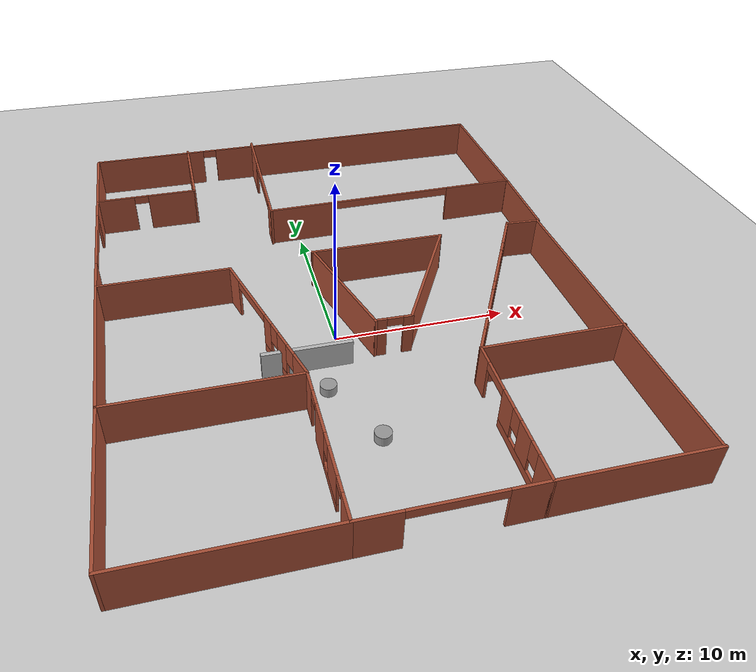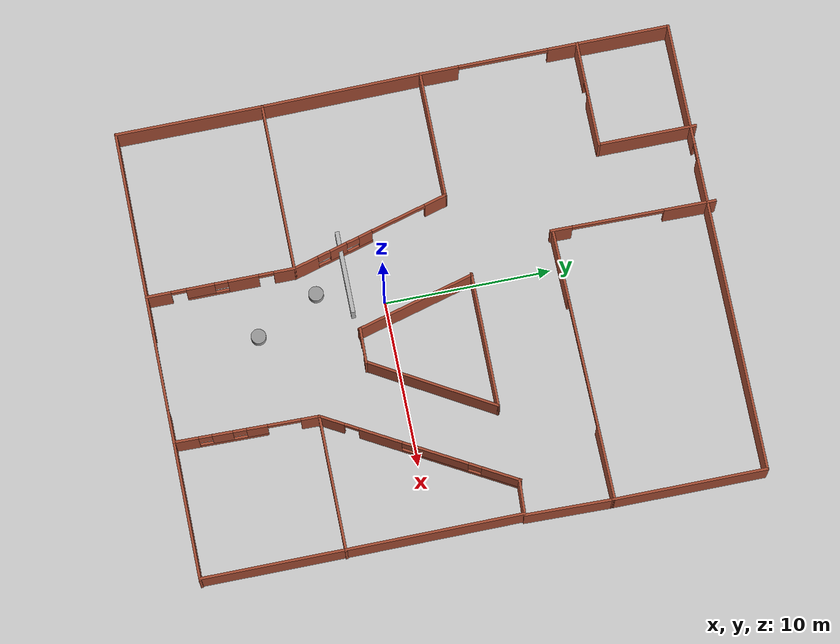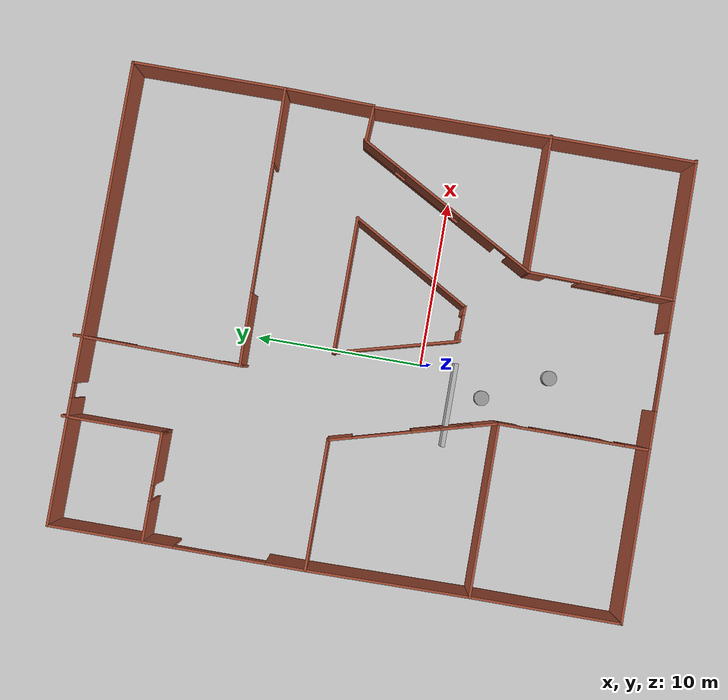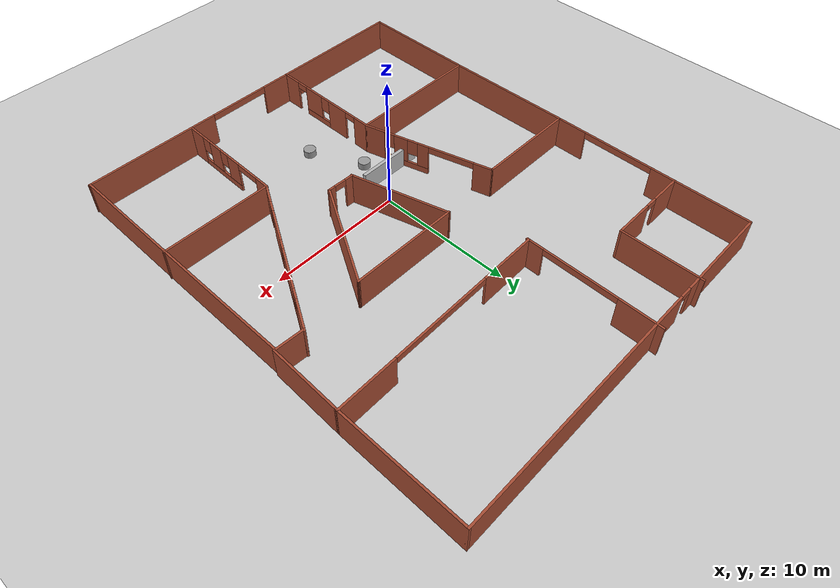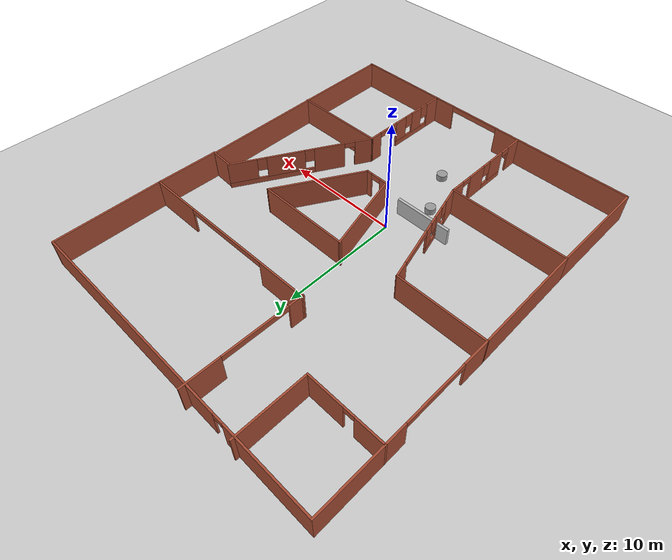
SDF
<sdf version="1.6">
 <world name="default">
  <light name="sun" type="directional">
   <pose>0 0 10 0 -0 0</pose>
   <diffuse>0.8 0.8 0.8 1</diffuse>
   <specular>0.2 0.2 0.2 1</specular>
   <attenuation>
    <range>1000</range>
    <constant>0.9</constant>
    <linear>0.01</linear>
    <quadratic>0.001</quadratic>
   </attenuation>
   <direction>-0.5 0.1 -0.9</direction>
  </light>
  <model name="unit_cylinder">
   <pose>0.583356 -7.74003 0 0 -0 0</pose>
   <link name="link">
    <inertial>
     <mass>1</mass>
     <inertia><ixx>0.145833</ixx><ixy>0</ixy><ixz>0</ixz><iyy>0.145833</iyy><iyz>0</iyz><izz>0.125</izz></inertia>
    </inertial>
    <collision name="collision">
     <geometry><cylinder><radius>0.45</radius><length>1</length></cylinder></geometry>
    </collision>
    <visual name="visual">
     <geometry><cylinder><radius>0.45</radius><length>1</length></cylinder></geometry>
     <material>
      <script><name>Gazebo/Grey</name><uri>file://media/materials/scripts/gazebo.material</uri></script>
     </material>
    </visual>
   </link>
  </model>
  <model name="box">
   <pose>-2 -2 0 0 -0 0</pose>
   <link name="boxsss">
    <visual name="box_visual"><geometry><box><size>5 0.25 3</size></box></geometry></visual>
    <collision name="box_collision"><geometry><box><size>5 0.25 3</size></box></geometry></collision>
   </link>
  </model>
  <model name="unit_cylinder1">
   <pose>-1.289148 -3.91868 0 0 -0 0</pose>
   <link name="link">
    <inertial>
     <mass>1</mass>
     <inertia><ixx>0.145833</ixx><ixy>0</ixy><ixz>0</ixz><iyy>0.145833</iyy><iyz>0</iyz><izz>0.125</izz></inertia>
    </inertial>
    <collision name="collision">
     <geometry><cylinder><radius>0.45</radius><length>1</length></cylinder></geometry>
    </collision>
    <visual name="visual">
     <geometry><cylinder><radius>0.45</radius><length>1</length></cylinder></geometry>
     <material>
      <script><name>Gazebo/Grey</name><uri>file://media/materials/scripts/gazebo.material</uri></script>
     </material>
    </visual>
   </link>
  </model>
  <model name="ground_plane">
   <static>1</static>
   <link name="link">
    <collision name="collision">
     <geometry><plane><normal>0 0 1</normal><size>100 100</size></plane></geometry>
     <surface><friction><ode><mu>100</mu><mu2>50</mu2></ode></friction></surface>
    </collision>
    <visual name="visual">
     <cast_shadows>0</cast_shadows>
     <geometry><plane><normal>0 0 1</normal><size>100 100</size></plane></geometry>
     <material>
      <script><uri>file://media/materials/scripts/gazebo.material</uri><name>Gazebo/Grey</name></script>
     </material>
    </visual>
   </link>
  </model>
  <gravity>0 0 -9.8</gravity>
  <magnetic_field>6e-06 2.3e-05 -4.2e-05</magnetic_field>
  <atmosphere type="adiabatic"/>
  <physics default="0" name="default_physics" type="ode">
   <max_step_size>0.001</max_step_size>
   <real_time_factor>1</real_time_factor>
   <real_time_update_rate>1000</real_time_update_rate>
  </physics>
  <scene><ambient>0.4 0.4 0.4 1</ambient><background>0.7 0.7 0.7 1</background><shadows>1</shadows></scene>
  <audio><device>default</device></audio>
  <spherical_coordinates>
   <surface_model>EARTH_WGS84</surface_model>
   <latitude_deg>0</latitude_deg>
   <longitude_deg>0</longitude_deg>
   <elevation>0</elevation>
   <heading_deg>0</heading_deg>
  </spherical_coordinates>
  <model name="mundov3">
   <pose>0.932437 3.25333 0 0 -0 0</pose>
   <link name="Wall_11">
    <pose>-4.80392 -3.33714 0 0 -0 1.83788</pose>
    <visual name="Wall_11_Visual_0">
     <pose>-4.24413 0 1.25 0 -0 0</pose>
     <geometry><box><size>1.56649 0.15 2.5</size></box></geometry>
     <material>
      <script><uri>file://media/materials/scripts/gazebo.material</uri><name>Gazebo/Bricks</name></script>
      <ambient>1 1 1 1</ambient>
     </material>
     <meta><layer>0</layer></meta>
    </visual>
    <collision name="Wall_11_Collision_0">
     <geometry><box><size>1.56649 0.15 2.5</size></box></geometry>
     <pose>-4.24413 0 1.25 0 -0 0</pose>
    </collision>
    <visual name="Wall_11_Visual_1">
     <pose>4.29236 0 1.25 0 -0 0</pose>
     <geometry><box><size>1.47004 0.15 2.5</size></box></geometry>
     <material>
      <script><uri>file://media/materials/scripts/gazebo.material</uri><name>Gazebo/Bricks</name></script>
      <ambient>1 1 1 1</ambient>
     </material>
     <meta><layer>0</layer></meta>
    </visual>
    <collision name="Wall_11_Collision_1">
     <geometry><box><size>1.47004 0.15 2.5</size></box></geometry>
     <pose>4.29236 0 1.25 0 -0 0</pose>
    </collision>
    <visual name="Wall_11_Visual_2">
     <pose>-1.68949 0 0.25 0 -0 0</pose>
     <geometry><box><size>3.54279 0.15 0.5</size></box></geometry>
     <material>
      <script><uri>file://media/materials/scripts/gazebo.material</uri><name>Gazebo/Bricks</name></script>
      <ambient>1 1 1 1</ambient>
     </material>
     <meta><layer>0</layer></meta>
    </visual>
    <collision name="Wall_11_Collision_2">
     <geometry><box><size>3.54279 0.15 0.5</size></box></geometry>
     <pose>-1.68949 0 0.25 0 -0 0</pose>
    </collision>
    <visual name="Wall_11_Visual_3">
     <pose>-2.1206 0 1.5 0 -0 0</pose>
     <geometry><box><size>1.08057 0.15 2</size></box></geometry>
     <material>
      <script><uri>file://media/materials/scripts/gazebo.material</uri><name>Gazebo/Bricks</name></script>
      <ambient>1 1 1 1</ambient>
     </material>
     <meta><layer>0</layer></meta>
    </visual>
    <collision name="Wall_11_Collision_3">
     <geometry><box><size>1.08057 0.15 2</size></box></geometry>
     <pose>-2.1206 0 1.5 0 -0 0</pose>
    </collision>
    <visual name="Wall_11_Visual_4">
     <pose>-0.349205 0 1.5 0 -0 0</pose>
     <geometry><box><size>0.862223 0.15 2</size></box></geometry>
     <material>
      <script><uri>file://media/materials/scripts/gazebo.material</uri><name>Gazebo/Bricks</name></script>
      <ambient>1 1 1 1</ambient>
     </material>
     <meta><layer>0</layer></meta>
    </visual>
    <collision name="Wall_11_Collision_4">
     <geometry><box><size>0.862223 0.15 2</size></box></geometry>
     <pose>-0.349205 0 1.5 0 -0 0</pose>
    </collision>
    <visual name="Wall_11_Visual_5">
     <pose>-3.06089 0 1.9 0 -0 0</pose>
     <geometry><box><size>0.8 0.15 1.2</size></box></geometry>
     <material>
      <script><uri>file://media/materials/scripts/gazebo.material</uri><name>Gazebo/Bricks</name></script>
      <ambient>1 1 1 1</ambient>
     </material>
     <meta><layer>0</layer></meta>
    </visual>
    <collision name="Wall_11_Collision_5">
     <geometry><box><size>0.8 0.15 1.2</size></box></geometry>
     <pose>-3.06089 0 1.9 0 -0 0</pose>
    </collision>
    <visual name="Wall_11_Visual_6">
     <pose>-1.18032 0 1.9 0 -0 0</pose>
     <geometry><box><size>0.8 0.15 1.2</size></box></geometry>
     <material>
      <script><uri>file://media/materials/scripts/gazebo.material</uri><name>Gazebo/Bricks</name></script>
      <ambient>1 1 1 1</ambient>
     </material>
     <meta><layer>0</layer></meta>
    </visual>
    <collision name="Wall_11_Collision_6">
     <geometry><box><size>0.8 0.15 1.2</size></box></geometry>
     <pose>-1.18032 0 1.9 0 -0 0</pose>
    </collision>
    <visual name="Wall_11_Visual_7">
     <pose>1.81962 0 2.25 0 -0 0</pose>
     <geometry><box><size>3.47543 0.15 0.5</size></box></geometry>
     <material>
      <script><uri>file://media/materials/scripts/gazebo.material</uri><name>Gazebo/Bricks</name></script>
      <ambient>1 1 1 1</ambient>
     </material>
     <meta><layer>0</layer></meta>
    </visual>
    <collision name="Wall_11_Collision_7">
     <geometry><box><size>3.47543 0.15 0.5</size></box></geometry>
     <pose>1.81962 0 2.25 0 -0 0</pose>
    </collision>
   </link>
   <link name="Wall_12">
    <collision name="Wall_12_Collision">
     <geometry><box><size>7.75 0.15 2.5</size></box></geometry>
     <pose>0 0 1.25 0 -0 0</pose>
    </collision>
    <visual name="Wall_12_Visual">
     <pose>0 0 1.25 0 -0 0</pose>
     <geometry><box><size>7.75 0.15 2.5</size></box></geometry>
     <material>
      <script><uri>file://media/materials/scripts/gazebo.material</uri><name>Gazebo/Bricks</name></script>
      <ambient>1 1 1 1</ambient>
     </material>
     <meta><layer>0</layer></meta>
    </visual>
    <pose>-9.91095 1.43964 0 0 -0 3.14159</pose>
   </link>
   <link name="Wall_13">
    <collision name="Wall_13_Collision">
     <geometry><box><size>9.74471 0.15 2.5</size></box></geometry>
     <pose>0 0 1.25 0 -0 0</pose>
    </collision>
    <visual name="Wall_13_Visual">
     <pose>0 0 1.25 0 -0 0</pose>
     <geometry><box><size>9.74471 0.15 2.5</size></box></geometry>
     <material>
      <script><uri>file://media/materials/scripts/gazebo.material</uri><name>Gazebo/Bricks</name></script>
      <ambient>1 1 1 1</ambient>
     </material>
     <meta><layer>0</layer></meta>
    </visual>
    <pose>-13.6539 -3.35737 0 0 -0 -1.55891</pose>
   </link>
   <link name="Wall_14">
    <collision name="Wall_14_Collision">
     <geometry><box><size>10.25 0.15 2.5</size></box></geometry>
     <pose>0 0 1.25 0 -0 0</pose>
    </collision>
    <visual name="Wall_14_Visual">
     <pose>0 0 1.25 0 -0 0</pose>
     <geometry><box><size>10.25 0.15 2.5</size></box></geometry>
     <material>
      <script><uri>file://media/materials/scripts/gazebo.material</uri><name>Gazebo/Bricks</name></script>
      <ambient>1 1 1 1</ambient>
     </material>
     <meta><layer>0</layer></meta>
    </visual>
    <pose>-8.54688 -8.15438 0 0 -0 0</pose>
   </link>
   <link name="Wall_16">
    <pose>-3.49688 -12.5794 0 0 -0 -1.5708</pose>
    <visual name="Wall_16_Visual_0">
     <pose>-3.83684 0 1.25 0 -0 0</pose>
     <geometry><box><size>1.32632 0.15 2.5</size></box></geometry>
     <material>
      <script><uri>file://media/materials/scripts/gazebo.material</uri><name>Gazebo/Bricks</name></script>
      <ambient>1 1 1 1</ambient>
     </material>
     <meta><layer>0</layer></meta>
    </visual>
    <collision name="Wall_16_Collision_0">
     <geometry><box><size>1.32632 0.15 2.5</size></box></geometry>
     <pose>-3.83684 0 1.25 0 -0 0</pose>
    </collision>
    <visual name="Wall_16_Visual_1">
     <pose>-1.35429 0 1.25 0 -0 0</pose>
     <geometry><box><size>1.83877 0.15 2.5</size></box></geometry>
     <material>
      <script><uri>file://media/materials/scripts/gazebo.material</uri><name>Gazebo/Bricks</name></script>
      <ambient>1 1 1 1</ambient>
     </material>
     <meta><layer>0</layer></meta>
    </visual>
    <collision name="Wall_16_Collision_1">
     <geometry><box><size>1.83877 0.15 2.5</size></box></geometry>
     <pose>-1.35429 0 1.25 0 -0 0</pose>
    </collision>
    <visual name="Wall_16_Visual_2">
     <pose>3.73117 0 1.25 0 -0 0</pose>
     <geometry><box><size>1.53766 0.15 2.5</size></box></geometry>
     <material>
      <script><uri>file://media/materials/scripts/gazebo.material</uri><name>Gazebo/Bricks</name></script>
      <ambient>1 1 1 1</ambient>
     </material>
     <meta><layer>0</layer></meta>
    </visual>
    <collision name="Wall_16_Collision_2">
     <geometry><box><size>1.53766 0.15 2.5</size></box></geometry>
     <pose>3.73117 0 1.25 0 -0 0</pose>
    </collision>
    <visual name="Wall_16_Visual_3">
     <pose>0.813717 0 0.25 0 -0 0</pose>
     <geometry><box><size>2.49726 0.15 0.5</size></box></geometry>
     <material>
      <script><uri>file://media/materials/scripts/gazebo.material</uri><name>Gazebo/Bricks</name></script>
      <ambient>1 1 1 1</ambient>
     </material>
     <meta><layer>0</layer></meta>
    </visual>
    <collision name="Wall_16_Collision_3">
     <geometry><box><size>2.49726 0.15 0.5</size></box></geometry>
     <pose>0.813717 0 0.25 0 -0 0</pose>
    </collision>
    <visual name="Wall_16_Visual_4">
     <pose>1.21372 0 1.5 0 -0 0</pose>
     <geometry><box><size>1.69725 0.15 2</size></box></geometry>
     <material>
      <script><uri>file://media/materials/scripts/gazebo.material</uri><name>Gazebo/Bricks</name></script>
      <ambient>1 1 1 1</ambient>
     </material>
     <meta><layer>0</layer></meta>
    </visual>
    <collision name="Wall_16_Collision_4">
     <geometry><box><size>1.69725 0.15 2</size></box></geometry>
     <pose>1.21372 0 1.5 0 -0 0</pose>
    </collision>
    <visual name="Wall_16_Visual_5">
     <pose>-0.03491 0 1.9 0 -0 0</pose>
     <geometry><box><size>0.8 0.15 1.2</size></box></geometry>
     <material>
      <script><uri>file://media/materials/scripts/gazebo.material</uri><name>Gazebo/Bricks</name></script>
      <ambient>1 1 1 1</ambient>
     </material>
     <meta><layer>0</layer></meta>
    </visual>
    <collision name="Wall_16_Collision_5">
     <geometry><box><size>0.8 0.15 1.2</size></box></geometry>
     <pose>-0.03491 0 1.9 0 -0 0</pose>
    </collision>
    <visual name="Wall_16_Visual_6">
     <pose>-2.72368 0 2.25 0 -0 0</pose>
     <geometry><box><size>0.9 0.15 0.5</size></box></geometry>
     <material>
      <script><uri>file://media/materials/scripts/gazebo.material</uri><name>Gazebo/Bricks</name></script>
      <ambient>1 1 1 1</ambient>
     </material>
     <meta><layer>0</layer></meta>
    </visual>
    <collision name="Wall_16_Collision_6">
     <geometry><box><size>0.9 0.15 0.5</size></box></geometry>
     <pose>-2.72368 0 2.25 0 -0 0</pose>
    </collision>
    <visual name="Wall_16_Visual_7">
     <pose>2.51234 0 2.25 0 -0 0</pose>
     <geometry><box><size>0.9 0.15 0.5</size></box></geometry>
     <material>
      <script><uri>file://media/materials/scripts/gazebo.material</uri><name>Gazebo/Bricks</name></script>
      <ambient>1 1 1 1</ambient>
     </material>
     <meta><layer>0</layer></meta>
    </visual>
    <collision name="Wall_16_Collision_7">
     <geometry><box><size>0.9 0.15 0.5</size></box></geometry>
     <pose>2.51234 0 2.25 0 -0 0</pose>
    </collision>
   </link>
   <link name="Wall_17">
    <collision name="Wall_17_Collision">
     <geometry><box><size>10.25 0.15 2.5</size></box></geometry>
     <pose>0 0 1.25 0 -0 0</pose>
    </collision>
    <visual name="Wall_17_Visual">
     <pose>0 0 1.25 0 -0 0</pose>
     <geometry><box><size>10.25 0.15 2.5</size></box></geometry>
     <material>
      <script><uri>file://media/materials/scripts/gazebo.material</uri><name>Gazebo/Bricks</name></script>
      <ambient>1 1 1 1</ambient>
     </material>
     <meta><layer>0</layer></meta>
    </visual>
    <pose>-8.54688 -17.0044 0 0 -0 3.14159</pose>
   </link>
   <link name="Wall_18">
    <collision name="Wall_18_Collision">
     <geometry><box><size>9 0.15 2.5</size></box></geometry>
     <pose>0 0 1.25 0 -0 0</pose>
    </collision>
    <visual name="Wall_18_Visual">
     <pose>0 0 1.25 0 -0 0</pose>
     <geometry><box><size>9 0.15 2.5</size></box></geometry>
     <material>
      <script><uri>file://media/materials/scripts/gazebo.material</uri><name>Gazebo/Bricks</name></script>
      <ambient>1 1 1 1</ambient>
     </material>
     <meta><layer>0</layer></meta>
    </visual>
    <pose>-13.5969 -12.5794 0 0 -0 1.5708</pose>
   </link>
   <link name="Wall_20">
    <pose>0.928119 -17.0044 0 0 -0 0</pose>
    <visual name="Wall_20_Visual_0">
     <pose>-3.32868 0 1.25 0 -0 0</pose>
     <geometry><box><size>2.34264 0.15 2.5</size></box></geometry>
     <material>
      <script><uri>file://media/materials/scripts/gazebo.material</uri><name>Gazebo/Bricks</name></script>
      <ambient>1 1 1 1</ambient>
     </material>
     <meta><layer>0</layer></meta>
    </visual>
    <collision name="Wall_20_Collision_0">
     <geometry><box><size>2.34264 0.15 2.5</size></box></geometry>
     <pose>-3.32868 0 1.25 0 -0 0</pose>
    </collision>
    <visual name="Wall_20_Visual_1">
     <pose>3.49284 0 1.25 0 -0 0</pose>
     <geometry><box><size>2.01431 0.15 2.5</size></box></geometry>
     <material>
      <script><uri>file://media/materials/scripts/gazebo.material</uri><name>Gazebo/Bricks</name></script>
      <ambient>1 1 1 1</ambient>
     </material>
     <meta><layer>0</layer></meta>
    </visual>
    <collision name="Wall_20_Collision_1">
     <geometry><box><size>2.01431 0.15 2.5</size></box></geometry>
     <pose>3.49284 0 1.25 0 -0 0</pose>
    </collision>
    <visual name="Wall_20_Visual_2">
     <pose>0.164163 0 2.25 0 -0 0</pose>
     <geometry><box><size>4.64305 0.15 0.5</size></box></geometry>
     <material>
      <script><uri>file://media/materials/scripts/gazebo.material</uri><name>Gazebo/Bricks</name></script>
      <ambient>1 1 1 1</ambient>
     </material>
     <meta><layer>0</layer></meta>
    </visual>
    <collision name="Wall_20_Collision_2">
     <geometry><box><size>4.64305 0.15 0.5</size></box></geometry>
     <pose>0.164163 0 2.25 0 -0 0</pose>
    </collision>
   </link>
   <link name="Wall_22">
    <pose>5.42826 -12.7044 0 0 -0 1.55332</pose>
    <visual name="Wall_22_Visual_0">
     <pose>-3.6142 0 1.25 0 -0 0</pose>
     <geometry><box><size>1.52292 0.15 2.5</size></box></geometry>
     <material>
      <script><uri>file://media/materials/scripts/gazebo.material</uri><name>Gazebo/Bricks</name></script>
      <ambient>1 1 1 1</ambient>
     </material>
     <meta><layer>0</layer></meta>
    </visual>
    <collision name="Wall_22_Collision_0">
     <geometry><box><size>1.52292 0.15 2.5</size></box></geometry>
     <pose>-3.6142 0 1.25 0 -0 0</pose>
    </collision>
    <visual name="Wall_22_Visual_1">
     <pose>3.78407 0 1.25 0 -0 0</pose>
     <geometry><box><size>1.18318 0.15 2.5</size></box></geometry>
     <material>
      <script><uri>file://media/materials/scripts/gazebo.material</uri><name>Gazebo/Bricks</name></script>
      <ambient>1 1 1 1</ambient>
     </material>
     <meta><layer>0</layer></meta>
    </visual>
    <collision name="Wall_22_Collision_1">
     <geometry><box><size>1.18318 0.15 2.5</size></box></geometry>
     <pose>3.78407 0 1.25 0 -0 0</pose>
    </collision>
    <visual name="Wall_22_Visual_2">
     <pose>-0.810802 0 0.25 0 -0 0</pose>
     <geometry><box><size>4.08388 0.15 0.5</size></box></geometry>
     <material>
      <script><uri>file://media/materials/scripts/gazebo.material</uri><name>Gazebo/Bricks</name></script>
      <ambient>1 1 1 1</ambient>
     </material>
     <meta><layer>0</layer></meta>
    </visual>
    <collision name="Wall_22_Collision_2">
     <geometry><box><size>4.08388 0.15 0.5</size></box></geometry>
     <pose>-0.810802 0 0.25 0 -0 0</pose>
    </collision>
    <visual name="Wall_22_Visual_3">
     <pose>-1.43738 0 1.5 0 -0 0</pose>
     <geometry><box><size>1.23073 0.15 2</size></box></geometry>
     <material>
      <script><uri>file://media/materials/scripts/gazebo.material</uri><name>Gazebo/Bricks</name></script>
      <ambient>1 1 1 1</ambient>
     </material>
     <meta><layer>0</layer></meta>
    </visual>
    <collision name="Wall_22_Collision_3">
     <geometry><box><size>1.23073 0.15 2</size></box></geometry>
     <pose>-1.43738 0 1.5 0 -0 0</pose>
    </collision>
    <visual name="Wall_22_Visual_4">
     <pose>0.604563 0 1.5 0 -0 0</pose>
     <geometry><box><size>1.25315 0.15 2</size></box></geometry>
     <material>
      <script><uri>file://media/materials/scripts/gazebo.material</uri><name>Gazebo/Bricks</name></script>
      <ambient>1 1 1 1</ambient>
     </material>
     <meta><layer>0</layer></meta>
    </visual>
    <collision name="Wall_22_Collision_4">
     <geometry><box><size>1.25315 0.15 2</size></box></geometry>
     <pose>0.604563 0 1.5 0 -0 0</pose>
    </collision>
    <visual name="Wall_22_Visual_5">
     <pose>-2.45274 0 1.9 0 -0 0</pose>
     <geometry><box><size>0.8 0.15 1.2</size></box></geometry>
     <material>
      <script><uri>file://media/materials/scripts/gazebo.material</uri><name>Gazebo/Bricks</name></script>
      <ambient>1 1 1 1</ambient>
     </material>
     <meta><layer>0</layer></meta>
    </visual>
    <collision name="Wall_22_Collision_5">
     <geometry><box><size>0.8 0.15 1.2</size></box></geometry>
     <pose>-2.45274 0 1.9 0 -0 0</pose>
    </collision>
    <visual name="Wall_22_Visual_6">
     <pose>-0.422012 0 1.9 0 -0 0</pose>
     <geometry><box><size>0.8 0.15 1.2</size></box></geometry>
     <material>
      <script><uri>file://media/materials/scripts/gazebo.material</uri><name>Gazebo/Bricks</name></script>
      <ambient>1 1 1 1</ambient>
     </material>
     <meta><layer>0</layer></meta>
    </visual>
    <collision name="Wall_22_Collision_6">
     <geometry><box><size>0.8 0.15 1.2</size></box></geometry>
     <pose>-0.422012 0 1.9 0 -0 0</pose>
    </collision>
    <visual name="Wall_22_Visual_7">
     <pose>2.21181 0 2.25 0 -0 0</pose>
     <geometry><box><size>1.96134 0.15 0.5</size></box></geometry>
     <material>
      <script><uri>file://media/materials/scripts/gazebo.material</uri><name>Gazebo/Bricks</name></script>
      <ambient>1 1 1 1</ambient>
     </material>
     <meta><layer>0</layer></meta>
    </visual>
    <collision name="Wall_22_Collision_7">
     <geometry><box><size>1.96134 0.15 0.5</size></box></geometry>
     <pose>2.21181 0 2.25 0 -0 0</pose>
    </collision>
   </link>
   <link name="Wall_23">
    <collision name="Wall_23_Collision">
     <geometry><box><size>8.25 0.15 2.5</size></box></geometry>
     <pose>0 0 1.25 0 -0 0</pose>
    </collision>
    <visual name="Wall_23_Visual">
     <pose>0 0 1.25 0 -0 0</pose>
     <geometry><box><size>8.25 0.15 2.5</size></box></geometry>
     <material>
      <script><uri>file://media/materials/scripts/gazebo.material</uri><name>Gazebo/Bricks</name></script>
      <ambient>1 1 1 1</ambient>
     </material>
     <meta><layer>0</layer></meta>
    </visual>
    <pose>9.55339 -8.40438 0 0 -0 0</pose>
   </link>
   <link name="Wall_24">
    <collision name="Wall_24_Collision">
     <geometry><box><size>8.75 0.15 2.5</size></box></geometry>
     <pose>0 0 1.25 0 -0 0</pose>
    </collision>
    <visual name="Wall_24_Visual">
     <pose>0 0 1.25 0 -0 0</pose>
     <geometry><box><size>8.75 0.15 2.5</size></box></geometry>
     <material>
      <script><uri>file://media/materials/scripts/gazebo.material</uri><name>Gazebo/Bricks</name></script>
      <ambient>1 1 1 1</ambient>
     </material>
     <meta><layer>0</layer></meta>
    </visual>
    <pose>13.5419 -12.7044 0 0 -0 -1.5708</pose>
   </link>
   <link name="Wall_27">
    <collision name="Wall_27_Collision">
     <geometry><box><size>8.40028 0.15 2.5</size></box></geometry>
     <pose>0 0 1.25 0 -0 0</pose>
    </collision>
    <visual name="Wall_27_Visual">
     <pose>0 0 1.25 0 -0 0</pose>
     <geometry><box><size>8.40028 0.15 2.5</size></box></geometry>
     <material>
      <script><uri>file://media/materials/scripts/gazebo.material</uri><name>Gazebo/Bricks</name></script>
      <ambient>1 1 1 1</ambient>
     </material>
     <meta><layer>0</layer></meta>
    </visual>
    <pose>9.47826 -17.0044 0 0 -0 0</pose>
   </link>
   <link name="Wall_35">
    <collision name="Wall_35_Collision">
     <geometry><box><size>7.5 0.15 2.5</size></box></geometry>
     <pose>0 0 1.25 0 -0 0</pose>
    </collision>
    <visual name="Wall_35_Visual">
     <pose>0 0 1.25 0 -0 0</pose>
     <geometry><box><size>7.5 0.15 2.5</size></box></geometry>
     <material>
      <script><uri>file://media/materials/scripts/gazebo.material</uri><name>Gazebo/Bricks</name></script>
      <ambient>1 1 1 1</ambient>
     </material>
     <meta><layer>0</layer></meta>
    </visual>
    <pose>-0.102939 -1.5544 0 0 -0 -1.309</pose>
   </link>
   <link name="Wall_36">
    <pose>1.86764 -5.08039 0 0 -0 -0.022302</pose>
    <visual name="Wall_36_Visual_0">
     <pose>-0.740669 0 1.25 0 -0 0</pose>
     <geometry><box><size>0.70843 0.15 2.5</size></box></geometry>
     <material>
      <script><uri>file://media/materials/scripts/gazebo.material</uri><name>Gazebo/Bricks</name></script>
      <ambient>1 1 1 1</ambient>
     </material>
     <meta><layer>0</layer></meta>
    </visual>
    <collision name="Wall_36_Collision_0">
     <geometry><box><size>0.70843 0.15 2.5</size></box></geometry>
     <pose>-0.740669 0 1.25 0 -0 0</pose>
    </collision>
    <visual name="Wall_36_Visual_1">
     <pose>0.804215 0 1.25 0 -0 0</pose>
     <geometry><box><size>0.581338 0.15 2.5</size></box></geometry>
     <material>
      <script><uri>file://media/materials/scripts/gazebo.material</uri><name>Gazebo/Bricks</name></script>
      <ambient>1 1 1 1</ambient>
     </material>
     <meta><layer>0</layer></meta>
    </visual>
    <collision name="Wall_36_Collision_1">
     <geometry><box><size>0.581338 0.15 2.5</size></box></geometry>
     <pose>0.804215 0 1.25 0 -0 0</pose>
    </collision>
    <visual name="Wall_36_Visual_2">
     <pose>0.063546 0 2.25 0 -0 0</pose>
     <geometry><box><size>0.9 0.15 0.5</size></box></geometry>
     <material>
      <script><uri>file://media/materials/scripts/gazebo.material</uri><name>Gazebo/Bricks</name></script>
      <ambient>1 1 1 1</ambient>
     </material>
     <meta><layer>0</layer></meta>
    </visual>
    <collision name="Wall_36_Collision_2">
     <geometry><box><size>0.9 0.15 0.5</size></box></geometry>
     <pose>0.063546 0 2.25 0 -0 0</pose>
    </collision>
   </link>
   <link name="Wall_37">
    <collision name="Wall_37_Collision">
     <geometry><box><size>8.25 0.15 2.5</size></box></geometry>
     <pose>0 0 1.25 0 -0 0</pose>
    </collision>
    <visual name="Wall_37_Visual">
     <pose>0 0 1.25 0 -0 0</pose>
     <geometry><box><size>8.25 0.15 2.5</size></box></geometry>
     <material>
      <script><uri>file://media/materials/scripts/gazebo.material</uri><name>Gazebo/Bricks</name></script>
      <ambient>1 1 1 1</ambient>
     </material>
     <meta><layer>0</layer></meta>
    </visual>
    <pose>4.91206 -1.54223 0 0 -0 1.0472</pose>
   </link>
   <link name="Wall_38">
    <collision name="Wall_38_Collision">
     <geometry><box><size>8.19472 0.15 2.5</size></box></geometry>
     <pose>0 0 1.25 0 -0 0</pose>
    </collision>
    <visual name="Wall_38_Visual">
     <pose>0 0 1.25 0 -0 0</pose>
     <geometry><box><size>8.19472 0.15 2.5</size></box></geometry>
     <material>
      <script><uri>file://media/materials/scripts/gazebo.material</uri><name>Gazebo/Bricks</name></script>
      <ambient>1 1 1 1</ambient>
     </material>
     <meta><layer>0</layer></meta>
    </visual>
    <pose>2.91473 1.98028 0 0 -0 3.13784</pose>
   </link>
   <link name="Wall_40">
    <pose>8.51539 -3.03204 0 0 -0 1.05981</pose>
    <visual name="Wall_40_Visual_0">
     <pose>-5.42757 0 1.25 0 -0 0</pose>
     <geometry><box><size>1.613 0.15 2.5</size></box></geometry>
     <material>
      <script><uri>file://media/materials/scripts/gazebo.material</uri><name>Gazebo/Bricks</name></script>
      <ambient>1 1 1 1</ambient>
     </material>
     <meta><layer>0</layer></meta>
    </visual>
    <collision name="Wall_40_Collision_0">
     <geometry><box><size>1.613 0.15 2.5</size></box></geometry>
     <pose>-5.42757 0 1.25 0 -0 0</pose>
    </collision>
    <visual name="Wall_40_Visual_1">
     <pose>-2.39746 0 1.25 0 -0 0</pose>
     <geometry><box><size>2.64721 0.15 2.5</size></box></geometry>
     <material>
      <script><uri>file://media/materials/scripts/gazebo.material</uri><name>Gazebo/Bricks</name></script>
      <ambient>1 1 1 1</ambient>
     </material>
     <meta><layer>0</layer></meta>
    </visual>
    <collision name="Wall_40_Collision_1">
     <geometry><box><size>2.64721 0.15 2.5</size></box></geometry>
     <pose>-2.39746 0 1.25 0 -0 0</pose>
    </collision>
    <visual name="Wall_40_Visual_2">
     <pose>2.58011 0 0.25 0 -0 0</pose>
     <geometry><box><size>7.30793 0.15 0.5</size></box></geometry>
     <material>
      <script><uri>file://media/materials/scripts/gazebo.material</uri><name>Gazebo/Bricks</name></script>
      <ambient>1 1 1 1</ambient>
     </material>
     <meta><layer>0</layer></meta>
    </visual>
    <collision name="Wall_40_Collision_2">
     <geometry><box><size>7.30793 0.15 0.5</size></box></geometry>
     <pose>2.58011 0 0.25 0 -0 0</pose>
    </collision>
    <visual name="Wall_40_Visual_3">
     <pose>1.3545 0 1.5 0 -0 0</pose>
     <geometry><box><size>3.25671 0.15 2</size></box></geometry>
     <material>
      <script><uri>file://media/materials/scripts/gazebo.material</uri><name>Gazebo/Bricks</name></script>
      <ambient>1 1 1 1</ambient>
     </material>
     <meta><layer>0</layer></meta>
    </visual>
    <collision name="Wall_40_Collision_3">
     <geometry><box><size>3.25671 0.15 2</size></box></geometry>
     <pose>1.3545 0 1.5 0 -0 0</pose>
    </collision>
    <visual name="Wall_40_Visual_4">
     <pose>5.00846 0 1.5 0 -0 0</pose>
     <geometry><box><size>2.45121 0.15 2</size></box></geometry>
     <material>
      <script><uri>file://media/materials/scripts/gazebo.material</uri><name>Gazebo/Bricks</name></script>
      <ambient>1 1 1 1</ambient>
     </material>
     <meta><layer>0</layer></meta>
    </visual>
    <collision name="Wall_40_Collision_4">
     <geometry><box><size>2.45121 0.15 2</size></box></geometry>
     <pose>5.00846 0 1.5 0 -0 0</pose>
    </collision>
    <visual name="Wall_40_Visual_5">
     <pose>-0.673857 0 1.9 0 -0 0</pose>
     <geometry><box><size>0.8 0.15 1.2</size></box></geometry>
     <material>
      <script><uri>file://media/materials/scripts/gazebo.material</uri><name>Gazebo/Bricks</name></script>
      <ambient>1 1 1 1</ambient>
     </material>
     <meta><layer>0</layer></meta>
    </visual>
    <collision name="Wall_40_Collision_5">
     <geometry><box><size>0.8 0.15 1.2</size></box></geometry>
     <pose>-0.673857 0 1.9 0 -0 0</pose>
    </collision>
    <visual name="Wall_40_Visual_6">
     <pose>3.38286 0 1.9 0 -0 0</pose>
     <geometry><box><size>0.8 0.15 1.2</size></box></geometry>
     <material>
      <script><uri>file://media/materials/scripts/gazebo.material</uri><name>Gazebo/Bricks</name></script>
      <ambient>1 1 1 1</ambient>
     </material>
     <meta><layer>0</layer></meta>
    </visual>
    <collision name="Wall_40_Collision_6">
     <geometry><box><size>0.8 0.15 1.2</size></box></geometry>
     <pose>3.38286 0 1.9 0 -0 0</pose>
    </collision>
    <visual name="Wall_40_Visual_7">
     <pose>-4.17107 0 2.25 0 -0 0</pose>
     <geometry><box><size>0.9 0.15 0.5</size></box></geometry>
     <material>
      <script><uri>file://media/materials/scripts/gazebo.material</uri><name>Gazebo/Bricks</name></script>
      <ambient>1 1 1 1</ambient>
     </material>
     <meta><layer>0</layer></meta>
    </visual>
    <collision name="Wall_40_Collision_7">
     <geometry><box><size>0.9 0.15 0.5</size></box></geometry>
     <pose>-4.17107 0 2.25 0 -0 0</pose>
    </collision>
   </link>
   <link name="Wall_41">
    <collision name="Wall_41_Collision">
     <geometry><box><size>2.12834 0.15 2.5</size></box></geometry>
     <pose>0 0 1.25 0 -0 0</pose>
    </collision>
    <visual name="Wall_41_Visual">
     <pose>0 0 1.25 0 -0 0</pose>
     <geometry><box><size>2.12834 0.15 2.5</size></box></geometry>
     <material>
      <script><uri>file://media/materials/scripts/gazebo.material</uri><name>Gazebo/Bricks</name></script>
      <ambient>1 1 1 1</ambient>
     </material>
     <meta><layer>0</layer></meta>
    </visual>
    <pose>12.5152 2.21882 0 0 -0 -0.051298</pose>
   </link>
   <link name="Wall_42">
    <collision name="Wall_42_Collision">
     <geometry><box><size>10.7226 0.15 2.5</size></box></geometry>
     <pose>0 0 1.25 0 -0 0</pose>
    </collision>
    <visual name="Wall_42_Visual">
     <pose>0 0 1.25 0 -0 0</pose>
     <geometry><box><size>10.7226 0.15 2.5</size></box></geometry>
     <material>
      <script><uri>file://media/materials/scripts/gazebo.material</uri><name>Gazebo/Bricks</name></script>
      <ambient>1 1 1 1</ambient>
     </material>
     <meta><layer>0</layer></meta>
    </visual>
    <pose>13.5225 -3.11814 0 0 -0 -1.56713</pose>
   </link>
   <link name="Wall_44">
    <pose>-13.711 8.98964 0 0 -0 1.5708</pose>
    <visual name="Wall_44_Visual_0">
     <pose>-6.4253 0 1.25 0 -0 0</pose>
     <geometry><box><size>2.3994 0.15 2.5</size></box></geometry>
     <material>
      <script><uri>file://media/materials/scripts/gazebo.material</uri><name>Gazebo/Bricks</name></script>
      <ambient>1 1 1 1</ambient>
     </material>
     <meta><layer>0</layer></meta>
    </visual>
    <collision name="Wall_44_Collision_0">
     <geometry><box><size>2.3994 0.15 2.5</size></box></geometry>
     <pose>-6.4253 0 1.25 0 -0 0</pose>
    </collision>
    <visual name="Wall_44_Visual_1">
     <pose>3.9103 0 1.25 0 -0 0</pose>
     <geometry><box><size>7.4294 0.15 2.5</size></box></geometry>
     <material>
      <script><uri>file://media/materials/scripts/gazebo.material</uri><name>Gazebo/Bricks</name></script>
      <ambient>1 1 1 1</ambient>
     </material>
     <meta><layer>0</layer></meta>
    </visual>
    <collision name="Wall_44_Collision_1">
     <geometry><box><size>7.4294 0.15 2.5</size></box></geometry>
     <pose>3.9103 0 1.25 0 -0 0</pose>
    </collision>
    <visual name="Wall_44_Visual_2">
     <pose>-2.515 0 2.25 0 -0 0</pose>
     <geometry><box><size>5.4212 0.15 0.5</size></box></geometry>
     <material>
      <script><uri>file://media/materials/scripts/gazebo.material</uri><name>Gazebo/Bricks</name></script>
      <ambient>1 1 1 1</ambient>
     </material>
     <meta><layer>0</layer></meta>
    </visual>
    <collision name="Wall_44_Collision_2">
     <geometry><box><size>5.4212 0.15 0.5</size></box></geometry>
     <pose>-2.515 0 2.25 0 -0 0</pose>
    </collision>
   </link>
   <link name="Wall_46">
    <pose>0.000717 16.5416 0 0 -0 0.000142</pose>
    <visual name="Wall_46_Visual_0">
     <pose>-10.0263 0 1.25 0 -0 0</pose>
     <geometry><box><size>7.52067 0.15 2.5</size></box></geometry>
     <material>
      <script><uri>file://media/materials/scripts/gazebo.material</uri><name>Gazebo/Bricks</name></script>
      <ambient>1 1 1 1</ambient>
     </material>
     <meta><layer>0</layer></meta>
    </visual>
    <collision name="Wall_46_Collision_0">
     <geometry><box><size>7.52067 0.15 2.5</size></box></geometry>
     <pose>-10.0263 0 1.25 0 -0 0</pose>
    </collision>
    <visual name="Wall_46_Visual_1">
     <pose>4.21034 0 1.25 0 -0 0</pose>
     <geometry><box><size>19.1527 0.15 2.5</size></box></geometry>
     <material>
      <script><uri>file://media/materials/scripts/gazebo.material</uri><name>Gazebo/Bricks</name></script>
      <ambient>1 1 1 1</ambient>
     </material>
     <meta><layer>0</layer></meta>
    </visual>
    <collision name="Wall_46_Collision_1">
     <geometry><box><size>19.1527 0.15 2.5</size></box></geometry>
     <pose>4.21034 0 1.25 0 -0 0</pose>
    </collision>
    <visual name="Wall_46_Visual_2">
     <pose>-5.816 0 2.25 0 -0 0</pose>
     <geometry><box><size>0.9 0.15 0.5</size></box></geometry>
     <material>
      <script><uri>file://media/materials/scripts/gazebo.material</uri><name>Gazebo/Bricks</name></script>
      <ambient>1 1 1 1</ambient>
     </material>
     <meta><layer>0</layer></meta>
    </visual>
    <collision name="Wall_46_Collision_2">
     <geometry><box><size>0.9 0.15 0.5</size></box></geometry>
     <pose>-5.816 0 2.25 0 -0 0</pose>
    </collision>
   </link>
   <link name="Wall_47">
    <collision name="Wall_47_Collision">
     <geometry><box><size>9.33634 0.15 2.5</size></box></geometry>
     <pose>0 0 1.25 0 -0 0</pose>
    </collision>
    <visual name="Wall_47_Visual">
     <pose>0 0 1.25 0 -0 0</pose>
     <geometry><box><size>9.33634 0.15 2.5</size></box></geometry>
     <material>
      <script><uri>file://media/materials/scripts/gazebo.material</uri><name>Gazebo/Bricks</name></script>
      <ambient>1 1 1 1</ambient>
     </material>
     <meta><layer>0</layer></meta>
    </visual>
    <pose>13.7124 11.9504 0 0 -0 -1.5708</pose>
   </link>
   <link name="Wall_48">
    <pose>5.48333 7.34461 0 0 -0 -3.12699</pose>
    <visual name="Wall_48_Visual_0">
     <pose>-6.04692 0 1.25 0 -0 0</pose>
     <geometry><box><size>4.51602 0.15 2.5</size></box></geometry>
     <material>
      <script><uri>file://media/materials/scripts/gazebo.material</uri><name>Gazebo/Bricks</name></script>
      <ambient>1 1 1 1</ambient>
     </material>
     <meta><layer>0</layer></meta>
    </visual>
    <collision name="Wall_48_Collision_0">
     <geometry><box><size>4.51602 0.15 2.5</size></box></geometry>
     <pose>-6.04692 0 1.25 0 -0 0</pose>
    </collision>
    <visual name="Wall_48_Visual_1">
     <pose>6.12181 0 1.25 0 -0 0</pose>
     <geometry><box><size>4.36625 0.15 2.5</size></box></geometry>
     <material>
      <script><uri>file://media/materials/scripts/gazebo.material</uri><name>Gazebo/Bricks</name></script>
      <ambient>1 1 1 1</ambient>
     </material>
     <meta><layer>0</layer></meta>
    </visual>
    <collision name="Wall_48_Collision_1">
     <geometry><box><size>4.36625 0.15 2.5</size></box></geometry>
     <pose>6.12181 0 1.25 0 -0 0</pose>
    </collision>
    <visual name="Wall_48_Visual_2">
     <pose>0.074885 0 2.25 0 -0 0</pose>
     <geometry><box><size>7.7276 0.15 0.5</size></box></geometry>
     <material>
      <script><uri>file://media/materials/scripts/gazebo.material</uri><name>Gazebo/Bricks</name></script>
      <ambient>1 1 1 1</ambient>
     </material>
     <meta><layer>0</layer></meta>
    </visual>
    <collision name="Wall_48_Collision_2">
     <geometry><box><size>7.7276 0.15 0.5</size></box></geometry>
     <pose>0.074885 0 2.25 0 -0 0</pose>
    </collision>
   </link>
   <link name="Wall_49">
    <pose>-2.69192 12.0608 0 0 -0 1.55991</pose>
    <visual name="Wall_49_Visual_0">
     <pose>-4.3492 0 1.25 0 -0 0</pose>
     <geometry><box><size>1.34024 0.15 2.5</size></box></geometry>
     <material>
      <script><uri>file://media/materials/scripts/gazebo.material</uri><name>Gazebo/Bricks</name></script>
      <ambient>1 1 1 1</ambient>
     </material>
     <meta><layer>0</layer></meta>
    </visual>
    <collision name="Wall_49_Collision_0">
     <geometry><box><size>1.34024 0.15 2.5</size></box></geometry>
     <pose>-4.3492 0 1.25 0 -0 0</pose>
    </collision>
    <visual name="Wall_49_Visual_1">
     <pose>3.43325 0 1.25 0 -0 0</pose>
     <geometry><box><size>3.17216 0.15 2.5</size></box></geometry>
     <material>
      <script><uri>file://media/materials/scripts/gazebo.material</uri><name>Gazebo/Bricks</name></script>
      <ambient>1 1 1 1</ambient>
     </material>
     <meta><layer>0</layer></meta>
    </visual>
    <collision name="Wall_49_Collision_1">
     <geometry><box><size>3.17216 0.15 2.5</size></box></geometry>
     <pose>3.43325 0 1.25 0 -0 0</pose>
    </collision>
    <visual name="Wall_49_Visual_2">
     <pose>-0.915955 0 2.25 0 -0 0</pose>
     <geometry><box><size>5.52625 0.15 0.5</size></box></geometry>
     <material>
      <script><uri>file://media/materials/scripts/gazebo.material</uri><name>Gazebo/Bricks</name></script>
      <ambient>1 1 1 1</ambient>
     </material>
     <meta><layer>0</layer></meta>
    </visual>
    <collision name="Wall_49_Collision_2">
     <geometry><box><size>5.52625 0.15 0.5</size></box></geometry>
     <pose>-0.915955 0 2.25 0 -0 0</pose>
    </collision>
   </link>
   <link name="Wall_51">
    <collision name="Wall_51_Collision">
     <geometry><box><size>5.34038 0.15 2.5</size></box></geometry>
     <pose>0 0 1.25 0 -0 0</pose>
    </collision>
    <visual name="Wall_51_Visual">
     <pose>0 0 1.25 0 -0 0</pose>
     <geometry><box><size>5.34038 0.15 2.5</size></box></geometry>
     <material>
      <script><uri>file://media/materials/scripts/gazebo.material</uri><name>Gazebo/Bricks</name></script>
      <ambient>1 1 1 1</ambient>
     </material>
     <meta><layer>0</layer></meta>
    </visual>
    <pose>13.6545 4.76265 0 0 -0 1.54851</pose>
   </link>
   <link name="Wall_53">
    <pose>-10.539 10.9771 0 0 -0 0</pose>
    <visual name="Wall_53_Visual_0">
     <pose>-2.02332 0 1.25 0 -0 0</pose>
     <geometry><box><size>2.45336 0.15 2.5</size></box></geometry>
     <material>
      <script><uri>file://media/materials/scripts/gazebo.material</uri><name>Gazebo/Bricks</name></script>
      <ambient>1 1 1 1</ambient>
     </material>
     <meta><layer>0</layer></meta>
    </visual>
    <collision name="Wall_53_Collision_0">
     <geometry><box><size>2.45336 0.15 2.5</size></box></geometry>
     <pose>-2.02332 0 1.25 0 -0 0</pose>
    </collision>
    <visual name="Wall_53_Visual_1">
     <pose>1.67668 0 1.25 0 -0 0</pose>
     <geometry><box><size>3.14664 0.15 2.5</size></box></geometry>
     <material>
      <script><uri>file://media/materials/scripts/gazebo.material</uri><name>Gazebo/Bricks</name></script>
      <ambient>1 1 1 1</ambient>
     </material>
     <meta><layer>0</layer></meta>
    </visual>
    <collision name="Wall_53_Collision_1">
     <geometry><box><size>3.14664 0.15 2.5</size></box></geometry>
     <pose>1.67668 0 1.25 0 -0 0</pose>
    </collision>
    <visual name="Wall_53_Visual_2">
     <pose>-0.346642 0 2.25 0 -0 0</pose>
     <geometry><box><size>0.9 0.15 0.5</size></box></geometry>
     <material>
      <script><uri>file://media/materials/scripts/gazebo.material</uri><name>Gazebo/Bricks</name></script>
      <ambient>1 1 1 1</ambient>
     </material>
     <meta><layer>0</layer></meta>
    </visual>
    <collision name="Wall_53_Collision_2">
     <geometry><box><size>0.9 0.15 0.5</size></box></geometry>
     <pose>-0.346642 0 2.25 0 -0 0</pose>
    </collision>
   </link>
   <link name="Wall_54">
    <collision name="Wall_54_Collision">
     <geometry><box><size>6 0.15 2.5</size></box></geometry>
     <pose>0 0 1.25 0 -0 0</pose>
    </collision>
    <visual name="Wall_54_Visual">
     <pose>0 0 1.25 0 -0 0</pose>
     <geometry><box><size>6 0.15 2.5</size></box></geometry>
     <material>
      <script><uri>file://media/materials/scripts/gazebo.material</uri><name>Gazebo/Bricks</name></script>
      <ambient>1 1 1 1</ambient>
     </material>
     <meta><layer>0</layer></meta>
    </visual>
    <pose>-7.36404 13.9021 0 0 -0 1.5708</pose>
   </link>
   <static>1</static>
  </model>
 </world>
</sdf>
